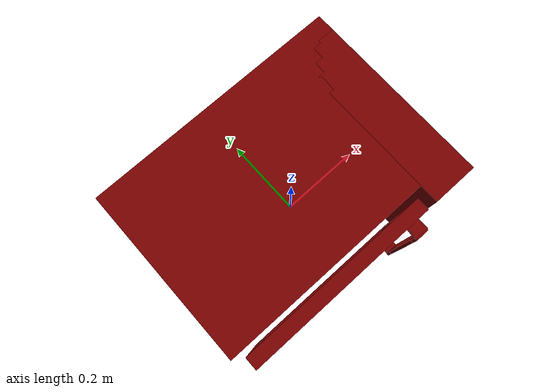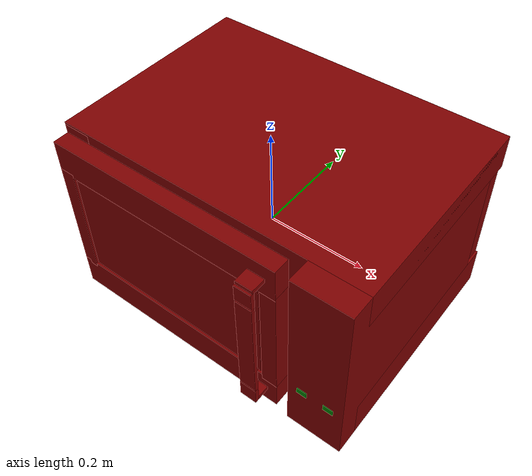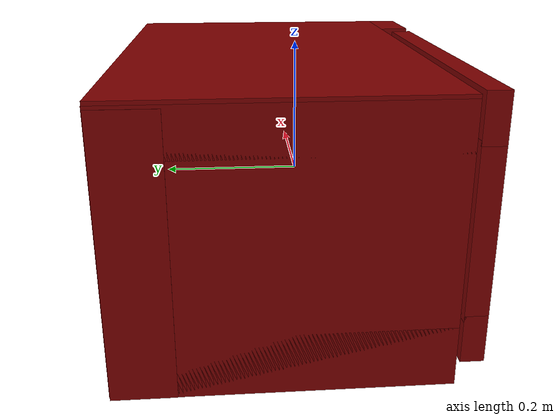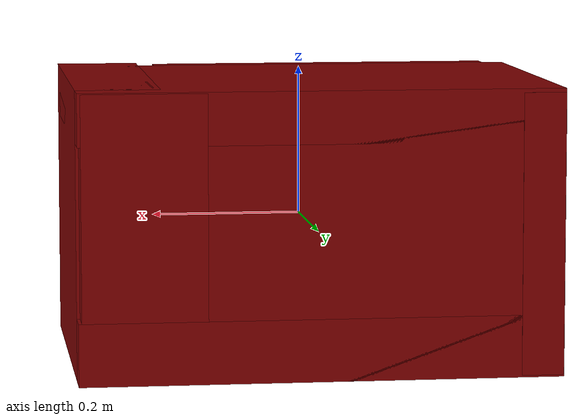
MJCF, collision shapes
<mujoco model="model">
  <compiler angle="radian"/>
  <asset>
    <mesh file="visuals/door.obj" name="door_vis"/>
    <mesh file="visuals/door_Clear.obj" name="door_Clear_vis"/>
    <mesh file="visuals/Body001.obj" name="Body001_vis"/>
    <mesh file="visuals/Disc001.obj" name="Disc001_vis"/>
    <texture file="visuals/T_BC001.png" name="Body001_material" type="2d"/>
    <material name="Body001_material" rgba="1 1 1 1.0" texture="Body001_material" shininess="0.2512328028678894" specular="0.3103448502657381"/>
    <texture file="visuals/T_BC001.png" name="door_material" type="2d"/>
    <material name="door_material" rgba="1 1 1 1.0" texture="door_material" shininess="0.2512328028678894" specular="0.3103448502657381"/>
    <material name="door_Clear_material" rgba="0.04224412515759468 0.04224412515759468 0.04224412515759468 0.800000011920929" shininess="0.2512328028678894" specular="0.3103448502657381"/>
    <texture file="visuals/T_BC001.png" name="Disc001_material" type="2d"/>
    <material name="Disc001_material" rgba="1 1 1 1.0" texture="Disc001_material" shininess="0.2512328028678894" specular="0.3103448502657381"/>
  </asset>
  <default>
    <default class="visual">
      <geom conaffinity="0" contype="0" group="1" type="mesh"/>
    </default>
    <default class="collision">
      <geom group="0" rgba="0.5 0 0 0.5"/>
    </default>
    <default class="spawn">
      <geom group="0" rgba="1 1 1 0.5" contype="0" conaffinity="0"/>
      <site group="0" rgba="1 1 1 0.5"/>
    </default>
    <default class="region">
      <geom group="1" conaffinity="0" contype="0" rgba="0 1 0 0"/>
    </default>
  </default>
  <worldbody>
    <body>
      <body name="object">
        <geom class="collision" type="box" pos="0.28804028034210205 -0.22508026659488678 -0.08048746734857559" size="0.010044815950095654 0.00039716094033792615 0.006886591203510761" quat="1.0 0.0 0.0 0.0" name="start_button" rgba="0.0 0.5 0 0.5"/>
        <geom class="collision" type="box" pos="0.23524892330169678 -0.22508026659488678 -0.08021195232868195" size="0.010021554306149483 0.0003947782388422638 0.006872855126857758" quat="1.0 0.0 0.0 0.0" name="stop_button" rgba="0.0 0.5 0 0.5"/>
        <geom class="collision" type="box" pos="-0.05606522411108017 -0.006216840352863073 -0.07694835215806961" size="0.16716837882995605 0.16716837882995605 0.0010897878091782331" quat="1.0 0.0 0.0 0.0" name="tray" rgba="0 1 0 0.5"/>
        <geom mesh="Body001_vis" type="mesh" solimp="0.998 0.998 0.001" solref="0.001 1" density="100" friction="0.95 0.3 0.1" class="visual" material="Body001_material"/>
        <geom class="collision" type="box" pos="-0.2888477146625519 0.039665114134550095 -0.0012215570313856006" size="0.027851169928908348 0.21701890230178833 0.1852727234363556" quat="1.0 0.0 0.0 0.0"/>
        <geom class="collision" type="box" pos="0.23082037270069122 0.03936713933944702 -0.0007989425212144852" size="0.08150354772806168 0.21672089397907257 0.1883750557899475" quat="1.0 0.0 0.0 0.0"/>
        <geom class="collision" type="box" pos="-2.34867911785841e-08 0.03936713561415672 0.15464387834072113" size="0.3166988492012024 0.21672092378139496 0.03453011065721512" quat="1.0 0.0 0.0 0.0"/>
        <geom class="collision" type="box" pos="-2.34867911785841e-08 0.03936713561415672 -0.14804884791374207" size="0.3166988492012024 0.21672092378139496 0.04112515226006508" quat="1.0 0.0 0.0 0.0"/>
        <geom class="collision" type="box" pos="-0.07183446735143661 0.21443091332912445 -0.004791893996298313" size="0.24538031220436096 0.041657134890556335 0.1843820959329605" quat="1.0 0.0 0.0 0.0"/>
        <geom class="collision" type="box" pos="0.261223703622818 -0.006090258713811636 -4.0745362639427185e-09" size="0.0554751381278038 0.21786582469940186 0.18917399644851685" quat="1.0 0.0 0.0 0.0"/>
        <geom class="collision" type="box" pos="-0.27998873591423035 -0.005724452435970306 0.012928989715874195" size="0.026524532586336136 0.12103907763957977 0.08569302409887314" quat="1.0 0.0 0.0 0.0"/>
        <body name="door">
          <joint axis="0.0 0.0 1.0" pos="-0.2902221977710724 -0.2019326090812683 0.0076302215456962585" limited="true" name="microjoint" range="-1.5707963267948966 0.0" type="hinge" damping="1" frictionloss="1" armature=".01" stiffness="0.05"/>
          <geom mesh="door_vis" type="mesh" solimp="0.998 0.998 0.001" solref="0.001 1" density="100" friction="0.95 0.3 0.1" class="visual" material="door_material"/>
          <geom class="collision" type="box" pos="-0.055106304585933685 -0.20777581632137299 0.1539645791053772" size="0.2370222806930542 0.015952063724398613 0.03360941261053085" quat="1.0 0.0 0.0 0.0"/>
          <geom class="collision" type="box" pos="-0.055106304585933685 -0.20777581632137299 -0.14089101552963257" size="0.2370222806930542 0.015952063724398613 0.033911868929862976" quat="1.0 0.0 0.0 0.0"/>
          <geom class="collision" type="box" pos="0.16612358391284943 -0.20777581632137299 0.003234627190977335" size="0.01586299203336239 0.015952063724398613 0.12191569805145264" quat="1.0 0.0 0.0 0.0"/>
          <geom class="collision" type="box" pos="-0.27732789516448975 -0.20777581632137299 0.005661776289343834" size="0.014800661243498325 0.015952063724398613 0.12143727391958237" quat="1.0 0.0 0.0 0.0"/>
          <geom class="collision" type="box" pos="0.1452796310186386 -0.2523866593837738 -0.12741456925868988" size="0.01679394580423832 0.00402682414278388 0.017611566931009293" quat="1.0 0.0 0.0 0.0"/>
          <geom class="collision" type="box" pos="0.14527960121631622 -0.2523885667324066 0.13459058105945587" size="0.01679394766688347 0.004026825539767742 0.01692659966647625" quat="1.0 0.0 0.0 0.0"/>
          <geom class="collision" type="box" pos="0.14527955651283264 -0.23616871237754822 0.15471932291984558" size="0.01679397001862526 0.016284829005599022 0.0041481382213532925" quat="1.0 0.0 0.0 0.0"/>
          <geom class="collision" type="box" pos="0.1455850899219513 -0.2345203310251236 -0.14039626717567444" size="0.016553714871406555 0.014636514708399773 0.004379956983029842" quat="1.0 0.0 0.0 0.0"/>
          <geom class="collision" type="box" pos="0.14527961611747742 -0.2523866593837738 0.0036662218626588583" size="0.016794003546237946 0.004026795271784067 0.11099153757095337" quat="1.0 0.0 0.0 0.0" name="door_handle"/>
          <body name="door_Clear">
            <geom mesh="door_Clear_vis" type="mesh" solimp="0.998 0.998 0.001" solref="0.001 1" density="100" friction="0.95 0.3 0.1" class="visual" material="door_Clear_material"/>
            <geom class="collision" type="box" pos="-0.05552075803279877 -0.22018659114837646 0.007482514716684818" size="0.20229002833366394 0.0018031829968094826 0.10940734297037125" quat="1.0 0.0 0.0 0.0"/>
          </body>
        </body>
        <body name="Disc001">
          <joint axis="0.0 0.0 -1.0" pos="-0.05599730834364891 -0.0066619813442230225 -0.08074215054512024" limited="false" name="Disc001_joint" range="0 360" type="hinge" damping="1" frictionloss="1" armature=".01" stiffness="0.05"/>
          <geom mesh="Disc001_vis" type="mesh" solimp="0.998 0.998 0.001" solref="0.001 1" density="100" friction="0.95 0.3 0.1" class="visual" material="Disc001_material"/>
          <geom class="collision" type="cylinder" pos="-0.05556977167725563 -0.0066036563366651535 -0.0855187177658081" size="0.16685064136981964 0.006239700131118298" quat="1.0 0.0 0.0 0.0"/>
        </body>
        <geom class="region" name="reg_main" type="box" pos="0.0 0.01607944816350937 0.0" size="0.3166988492012024 0.24000859260559082 0.18917399644851685"/>
        <geom class="region" name="reg_int" type="box" pos="-0.05486471951007843 -0.001358814537525177 0.009017027914524078" size="0.20403523743152618 0.17526546865701675 0.11028897762298584"/>
      </body>
    </body>
  </worldbody>
  <actuator>
    <motor name="microjoint_actuator" joint="microjoint" gear="10"/>
    <motor name="Disc001_joint_actuator" joint="Disc001_joint" gear="10"/>
  </actuator>
</mujoco>
